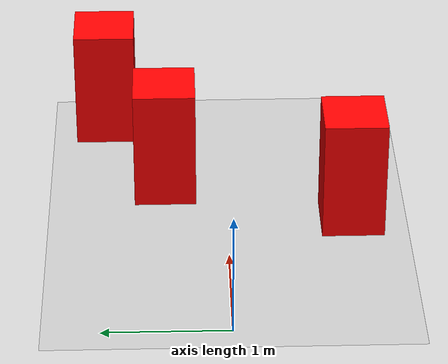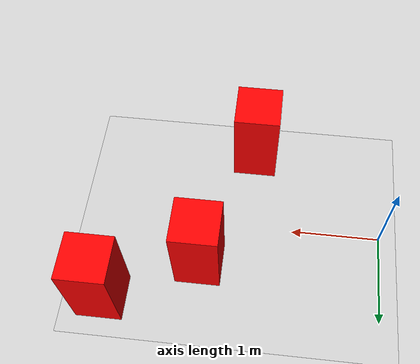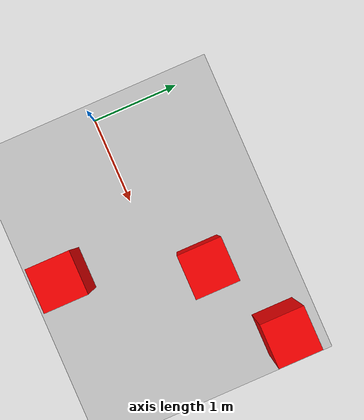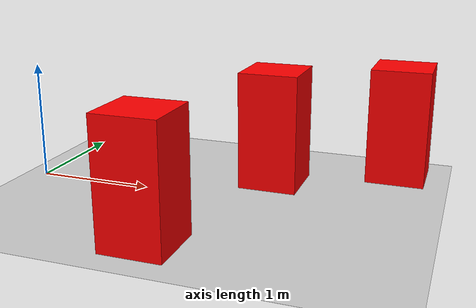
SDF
<?xml version="1.0" ?>
<sdf version="1.8">
    <world name="basic_world">
        <physics name="1ms" type="ignored">
            <max_step_size>0.001</max_step_size>
            <real_time_factor>1.0</real_time_factor>
            <real_time_update_rate>0</real_time_update_rate>
        </physics>
        <plugin filename="gz-sim-physics-system" name="gz::sim::systems::Physics"></plugin>
        <plugin filename="gz-sim-user-commands-system" name="gz::sim::systems::UserCommands"></plugin>
        <plugin filename="gz-sim-scene-broadcaster-system" name="gz::sim::systems::SceneBroadcaster"></plugin>
        <plugin filename="gz-sim-sensors-system" name="gz::sim::systems::Sensors">
            <render_engine>ogre2</render_engine>
        </plugin>

        <light type="directional" name="sun">
            <cast_shadows>true</cast_shadows>
            <pose>0 0 10 0 0 0</pose>
            <diffuse>0.8 0.8 0.8 1</diffuse>
            <specular>0.2 0.2 0.2 1</specular>
            <attenuation>
                <range>1000</range>
                <constant>0.9</constant>
                <linear>0.01</linear>
                <quadratic>0.001</quadratic>
            </attenuation>
            <direction>-0.5 0.1 -0.9</direction>
        </light>

        <model name="ground_plane">
            <static>true</static>
            <link name="link">
                <collision name="collision">
                    <geometry>
                        <plane>
                            <normal>0 0 1</normal>
                            <size>100 100</size>
                        </plane>
                    </geometry>
                </collision>
                <visual name="visual">
                    <geometry>
                        <plane>
                            <normal>0 0 1</normal>
                            <size>100 100</size>
                        </plane>
                    </geometry>
                    <material>
                        <ambient>0.8 0.8 0.8 1</ambient>
                        <diffuse>0.8 0.8 0.8 1</diffuse>
                        <specular>0.8 0.8 0.8 1</specular>
                    </material>
                </visual>
            </link>
        </model>

        <model name="box_obstacle_1">
            <pose>2.0 0.5 0.5 0 0 0</pose>
            <link name="link">
                <collision name="collision">
                    <geometry>
                        <box>
                            <size>0.5 0.5 1.0</size>
                        </box>
                    </geometry>
                </collision>
                <visual name="visual">
                    <geometry>
                        <box>
                            <size>0.5 0.5 1.0</size>
                        </box>
                    </geometry>
                    <material>
                        <ambient>1 0 0 1</ambient>
                        <diffuse>1 0 0 1</diffuse>
                        <specular>1 0 0 1</specular>
                    </material>
                </visual>
            </link>
        </model>

        <model name="box_obstacle_2">
            <pose>1.5 -1.0 0.5 0 0 0</pose>
            <link name="link">
                <collision name="collision">
                    <geometry>
                        <box>
                            <size>0.5 0.5 1.0</size>
                        </box>
                    </geometry>
                </collision>
                <visual name="visual">
                    <geometry>
                        <box>
                            <size>0.5 0.5 1.0</size>
                        </box>
                    </geometry>
                    <material>
                        <ambient>1 0 0 1</ambient>
                        <diffuse>1 0 0 1</diffuse>
                        <specular>1 0 0 1</specular>
                    </material>
                </visual>
            </link>
        </model>

        <model name="box_obstacle_3">
            <pose>3.0 1.0 0.5 0 0 0</pose>
            <link name="link">
                <collision name="collision">
                    <geometry>
                        <box>
                            <size>0.5 0.5 1.0</size>
                        </box>
                    </geometry>
                </collision>
                <visual name="visual">
                    <geometry>
                        <box>
                            <size>0.5 0.5 1.0</size>
                        </box>
                    </geometry>
                    <material>
                        <ambient>1 0 0 1</ambient>
                        <diffuse>1 0 0 1</diffuse>
                        <specular>1 0 0 1</specular>
                    </material>
                </visual>
            </link>
        </model>
    </world>
</sdf>
